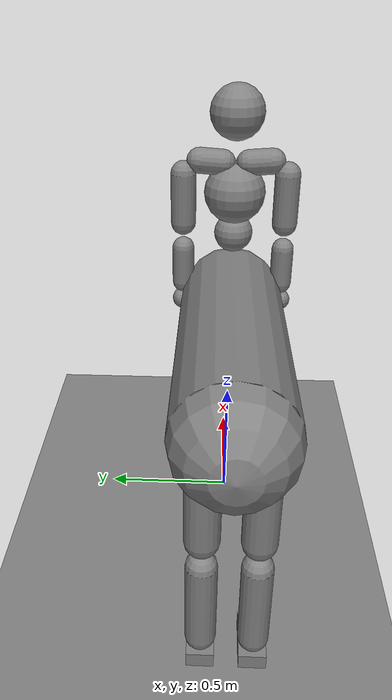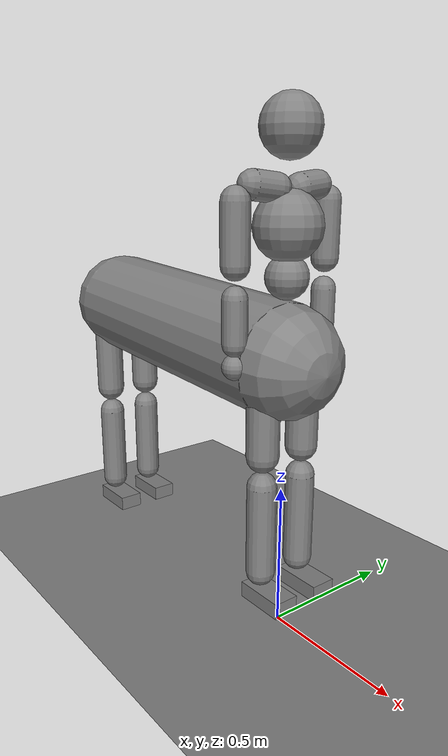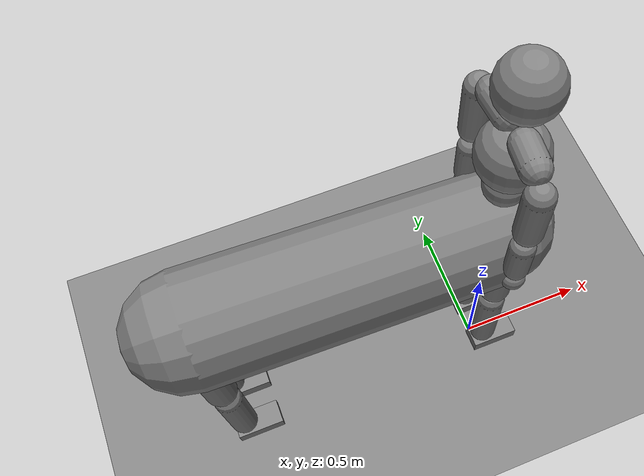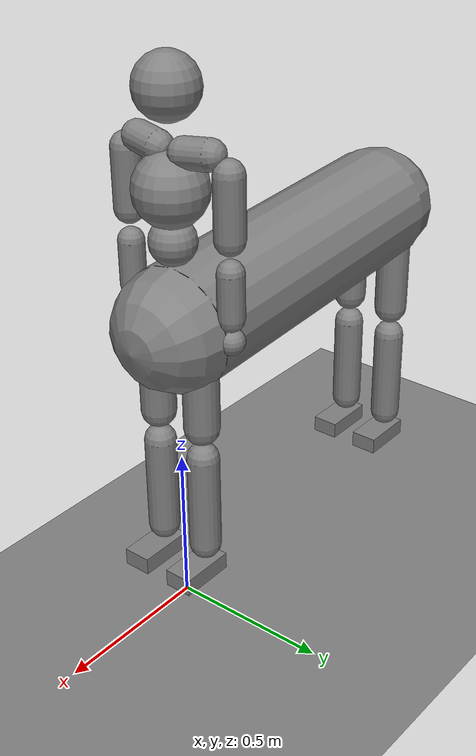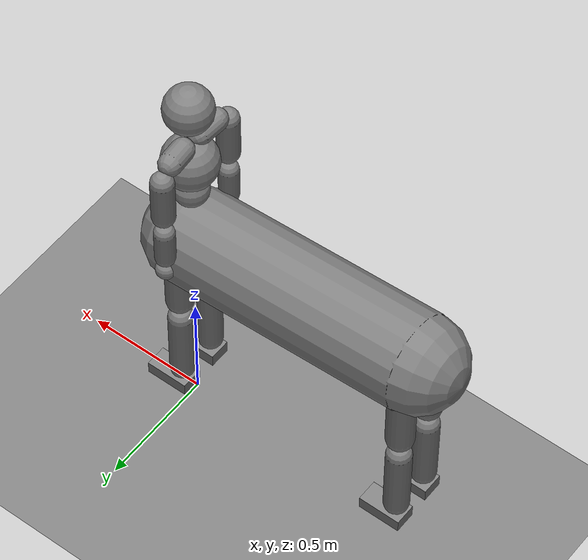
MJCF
<mujoco model="humanoid">

  <statistic extent="2" center="0 0 1"/>

  <option timestep="0.00555"/>

  <default>
    <motor ctrlrange="-1 1" ctrllimited="true"/>
    <default class="body">
      <geom type="capsule" condim="1" friction="1.0 0.05 0.05" solimp=".9 .99 .003" solref=".015 1"/>
      <joint type="hinge" damping="0.1" stiffness="5" armature=".007" limited="true" solimplimit="0 .99 .01"/>
      <site size=".04" group="3"/>
      <default class="force-torque">
        <site type="box" size=".01 .01 .02" rgba="1 0 0 1" />
      </default>
      <default class="touch">
        <site type="capsule" rgba="0 0 1 .3"/>
      </default>
    </default>
  </default>

  <worldbody>
    <geom name="floor" type="plane" conaffinity="1" size="100 100 .2"/>
    <body name="pelvis" pos="0 0 1" childclass="body">
      <freejoint name="root"/>
      <site name="root" class="force-torque"/>
      <geom name="pelvis" fromto="0 0 -0.06 -1 0 -0" size=".19" density="2226"/>
      <geom name="upper_waist" type="sphere" pos="0 0 0.205" size="0.07" density="2226"/>
      <site name="pelvis" class="touch" type="sphere" pos="0 0 0.07" size="0.091"/>
      <site name="upper_waist" class="touch" type="sphere" pos="0 0 0.205" size="0.071"/>

      <body name="torso" pos="0 0 0.236151">
        <light name="top" pos="0 0 2" mode="trackcom"/>
        <camera name="back" pos="-3 0 1" xyaxes="0 -1 0 1 0 2" mode="trackcom"/>
        <camera name="side" pos="0 -3 1" xyaxes="1 0 0 0 1 2" mode="trackcom"/>
        <joint name="abdomen_x" pos="0 0 0" axis="1 0 0" range="-60 60" stiffness="1000" damping="100" armature=".02"/>
        <joint name="abdomen_y" pos="0 0 0" axis="0 1 0" range="-60 90" stiffness="1000" damping="100" armature=".02"/>
        <joint name="abdomen_z" pos="0 0 0" axis="0 0 1" range="-50 50" stiffness="1000" damping="100" armature=".02"/>
        <geom name="torso" type="sphere" pos="0 0 0.12" size="0.11" density="1794"/>
        <site name="torso" class="touch" type="sphere" pos="0 0 0.12" size="0.111"/>

        <geom name="right_clavicle" fromto="-0.0060125 -0.0457775 0.2287955 -0.016835 -0.128177 0.2376182" size=".045" density="1100"/>
        <geom name="left_clavicle" fromto="-0.0060125 0.0457775 0.2287955 -0.016835 0.128177 0.2376182" size=".045" density="1100"/>

        <body name="head" pos="0 0 0.223894">
          <joint name="neck_x" axis="1 0 0" range="-50 50" stiffness="100" damping="10" armature=".01"/>
          <joint name="neck_y" axis="0 1 0" range="-40 60" stiffness="100" damping="10" armature=".01"/>
          <joint name="neck_z" axis="0 0 1" range="-45 45" stiffness="100" damping="10" armature=".01"/>
          <geom name="head" type="sphere" pos="0 0 0.175" size="0.095" density="1081"/>
          <site name="head" class="touch" pos="0 0 0.175" type="sphere" size="0.103"/>
          <camera name="egocentric" pos=".103 0 0.175" xyaxes="0 -1 0 .1 0 1" fovy="80"/>
        </body>

        <body name="right_upper_arm" pos="-0.02405 -0.18311 0.24350">
          <joint name="right_shoulder_x" axis="1 0 0" range="-180 45" stiffness="400" damping="40" armature=".02"/>
          <joint name="right_shoulder_y" axis="0 1 0" range="-180 60" stiffness="400" damping="40" armature=".02"/>
          <joint name="right_shoulder_z" axis="0 0 1"  range="-90 90" stiffness="400" damping="40" armature=".02"/>
          <geom name="right_upper_arm" fromto="0 0 -0.05 0 0 -0.23" size=".045" density="982"/>
          <site name="right_upper_arm" class="touch" pos="0 0 -0.14" size="0.046 0.1" zaxis="0 0 1"/>

          <body name="right_lower_arm" pos="0 0 -0.274788">
            <joint name="right_elbow" axis="0 1 0" range="-160 0" stiffness="300" damping="30" armature=".01"/>
            <geom name="right_lower_arm" fromto="0 0 -0.0525 0 0 -0.1875" size="0.04" density="1056"/>
            <site name="right_lower_arm" class="touch" pos="0 0 -0.12" size="0.041 0.0685" zaxis="0 1 0"/>

            <body name="right_hand" pos="0 0 -0.258947">
              <geom name="right_hand" type="sphere" size=".04" density="1865"/>
              <site name="right_hand" class="touch" type="sphere" size=".041"/>
            </body>
          </body>
        </body>

        <body name="left_upper_arm" pos="-0.02405 0.18311 0.24350">
          <joint name="left_shoulder_x" axis="1 0 0" range="-45 180" stiffness="400" damping="40" armature=".02"/>
          <joint name="left_shoulder_y" axis="0 1 0" range="-180 60" stiffness="400" damping="40" armature=".02"/>
          <joint name="left_shoulder_z" axis="0 0 1"  range="-90 90" stiffness="400" damping="40" armature=".02"/>
          <geom name="left_upper_arm" fromto="0 0 -0.05 0 0 -0.23" size="0.045" density="982"/>
          <site name="left_upper_arm" class="touch" pos="0 0 -0.14" size="0.046 0.1" zaxis="0 0 1"/>

          <body name="left_lower_arm" pos="0 0 -0.274788">
            <joint name="left_elbow" axis="0 1 0" range="-160 0" stiffness="300" damping="30" armature=".01"/>
            <geom name="left_lower_arm" fromto="0 0 -0.0525 0 0 -0.1875" size="0.04" density="1056"/>
            <site name="left_lower_arm" class="touch" pos="0 0 -0.1" size="0.041 0.0685" zaxis="0 0 1"/>

            <body name="left_hand" pos="0 0 -0.258947">
              <geom name="left_hand" type="sphere" size=".04" density="1865"/>
              <site name="left_hand" class="touch" type="sphere" size=".041"/>
            </body>
          </body>
        </body>
      </body>

      <body name="right_thigh" pos="0 -0.084887 0">
        <site name="right_hip" class="force-torque"/>
        <joint name="right_hip_x" axis="1 0 0" range="-60 15" stiffness="500" damping="50" armature=".02"/>
        <joint name="right_hip_y" axis="0 1 0" range="-140 60" stiffness="500" damping="50" armature=".02"/>
        <joint name="right_hip_z" axis="0 0 1" range="-60 35" stiffness="500" damping="50" armature=".02"/>
        <geom name="right_thigh" fromto="0 0 -0.06 0 0 -0.36" size="0.055" density="1269"/>
        <site name="right_thigh" class="touch" pos="0 0 -0.21" size="0.056 0.301" zaxis="0 0 -1"/>

        <body name="right_shin" pos="0 0 -0.421546">
          <site name="right_knee" class="force-torque" pos="0 0 0"/>
          <joint name="right_knee" pos="0 0 0" axis="0 1 0" range="0 160" stiffness="500" damping="50" armature=".02"/>
          <geom name="right_shin" fromto="0 0 -0.045 0 0 -0.355"  size=".05" density="1014"/>
          <site name="right_shin" class="touch" pos="0 0 -0.2" size="0.051 0.156" zaxis="0 0 -1"/>

          <body name="right_foot" pos="0 0 -0.409870">
            <site name="right_ankle" class="force-torque"/>
            <joint name="right_ankle_x" pos="0 0 0" axis="1 0 0" range="-30 30" stiffness="400" damping="40" armature=".01"/>
            <joint name="right_ankle_y" pos="0 0 0" axis="0 1 0" range="-55 55" stiffness="400" damping="40" armature=".01"/>
            <joint name="right_ankle_z" pos="0 0 0" axis="0 0 1" range="-40 40" stiffness="400" damping="40" armature=".01"/>
            <geom name="right_foot" type="box" pos="0.045 0 -0.0225" size="0.0885 0.045 0.0275" density="1141"/>
            <site name="right_foot" class="touch" type="box" pos="0.045 0 -0.0225" size="0.0895 0.055 0.0285"/>
          </body>
        </body>
      </body>

      <body name="left_thigh" pos="0 0.084887 0">
        <site name="left_hip" class="force-torque"/>
        <joint name="left_hip_x" axis="1 0 0" range="-15 60" stiffness="500" damping="50" armature=".02"/>
        <joint name="left_hip_y" axis="0 1 0" range="-140 60" stiffness="500" damping="50" armature=".02"/>
        <joint name="left_hip_z" axis="0 0 1" range="-35 60" stiffness="500" damping="50" armature=".02"/>
        <geom name="left_thigh" fromto="0 0 -0.06 0 0 -0.36" size=".055" density="1269"/>
        <site name="left_thigh" class="touch" pos="0 0 -0.21" size="0.056 0.301" zaxis="0 0 -1"/>

        <body name="left_shin" pos="0 0 -0.421546">
          <site name="left_knee" class="force-torque" pos="0 0 .02"/>
          <joint name="left_knee" pos="0 0 0" axis="0 1 0" range="0 160" stiffness="500" damping="50" armature=".02"/>
          <geom name="left_shin" fromto="0 0 -0.045 0 0 -0.355"  size=".05" density="1014"/>
          <site name="left_shin" class="touch" pos="0 0 -0.2" size="0.051 0.156" zaxis="0 0 -1"/>

          <body name="left_foot" pos="0 0 -0.409870">
            <site name="left_ankle" class="force-torque"/>
            <joint name="left_ankle_x" pos="0 0 0" axis="1 0 0" range="-30 30" stiffness="400" damping="40" armature=".01"/>
            <joint name="left_ankle_y" pos="0 0 0" axis="0 1 0" range="-55 55" stiffness="400" damping="40" armature=".01"/>
            <joint name="left_ankle_z" pos="0 0 0" axis="0 0 1" range="-40 40" stiffness="400" damping="40" armature=".01"/>
            <geom name="left_foot" type="box" pos="0.045 0 -0.0225" size="0.0885 0.045 0.0275" density="1141"/>
            <site name="left_foot" class="touch" type="box" pos="0.045 0 -0.0225" size="0.0895 0.055 0.0285"/>
          </body>
        </body>
      </body>

      <body name="left_thigh_2" pos="-1 0.084887 0">
        <site name="left_hip_2" class="force-torque"/>
        <joint name="left_hip_x_2" axis="1 0 0" range="-15 60" stiffness="500" damping="50" armature=".02"/>
        <joint name="left_hip_y_2" axis="0 1 0" range="-140 60" stiffness="500" damping="50" armature=".02"/>
        <joint name="left_hip_z_2" axis="0 0 1" range="-35 60" stiffness="500" damping="50" armature=".02"/>
        <geom name="left_thigh_2" fromto="0 0 -0.06 0 0 -0.36" size=".055" density="1269"/>
        <site name="left_thigh_2" class="touch" pos="0 0 -0.21" size="0.056 0.301" zaxis="0 0 -1"/>

        <body name="left_shin_2" pos="0 0 -0.421546">
          <site name="left_knee_2" class="force-torque" pos="0 0 .02"/>
          <joint name="left_knee_2" pos="0 0 0" axis="0 1 0" range="0 160" stiffness="500" damping="50" armature=".02"/>
          <geom name="left_shin_2" fromto="0 0 -0.045 0 0 -0.355"  size=".05" density="1014"/>
          <site name="left_shin_2" class="touch" pos="0 0 -0.2" size="0.051 0.156" zaxis="0 0 -1"/>

          <body name="left_foot_2" pos="0 0 -0.409870">
            <site name="left_ankle_2" class="force-torque"/>
            <joint name="left_ankle_x_2" pos="0 0 0" axis="1 0 0" range="-30 30" stiffness="400" damping="40" armature=".01"/>
            <joint name="left_ankle_y_2" pos="0 0 0" axis="0 1 0" range="-55 55" stiffness="400" damping="40" armature=".01"/>
            <joint name="left_ankle_z_2" pos="0 0 0" axis="0 0 1" range="-40 40" stiffness="400" damping="40" armature=".01"/>
            <geom name="left_foot_2" type="box" pos="0.045 0 -0.0225" size="0.0885 0.045 0.0275" density="1141"/>
            <site name="left_foot_2" class="touch" type="box" pos="0.045 0 -0.0225" size="0.0895 0.055 0.0285"/>
          </body>
        </body>
      </body>

      <body name="right_thigh_2" pos="-1 -0.084887 0">
        <site name="right_hip_2" class="force-torque"/>
        <joint name="right_hip_x_2" axis="1 0 0" range="-60 15" stiffness="500" damping="50" armature=".02"/>
        <joint name="right_hip_y_2" axis="0 1 0" range="-140 60" stiffness="500" damping="50" armature=".02"/>
        <joint name="right_hip_z_2" axis="0 0 1" range="-60 35" stiffness="500" damping="50" armature=".02"/>
        <geom name="right_thigh_2" fromto="0 0 -0.06 0 0 -0.36" size="0.055" density="1269"/>
        <site name="right_thigh_2" class="touch" pos="0 0 -0.21" size="0.056 0.301" zaxis="0 0 -1"/>

        <body name="right_shin_2" pos="0 0 -0.421546">
          <site name="right_knee_2" class="force-torque" pos="0 0 0"/>
          <joint name="right_knee_2" pos="0 0 0" axis="0 1 0" range="0 160" stiffness="500" damping="50" armature=".02"/>
          <geom name="right_shin_2" fromto="0 0 -0.045 0 0 -0.355"  size=".05" density="1014"/>
          <site name="right_shin_2" class="touch" pos="0 0 -0.2" size="0.051 0.156" zaxis="0 0 -1"/>

          <body name="right_foot_2" pos="0 0 -0.409870">
            <site name="right_ankle_2" class="force-torque"/>
            <joint name="right_ankle_x_2" pos="0 0 0" axis="1 0 0" range="-30 30" stiffness="400" damping="40" armature=".01"/>
            <joint name="right_ankle_y_2" pos="0 0 0" axis="0 1 0" range="-55 55" stiffness="400" damping="40" armature=".01"/>
            <joint name="right_ankle_z_2" pos="0 0 0" axis="0 0 1" range="-40 40" stiffness="400" damping="40" armature=".01"/>
            <geom name="right_foot_2" type="box" pos="0.045 0 -0.0225" size="0.0885 0.045 0.0275" density="1141"/>
            <site name="right_foot_2" class="touch" type="box" pos="0.045 0 -0.0225" size="0.0895 0.055 0.0285"/>
          </body>
        </body>
      </body>
    </body>
  </worldbody>

  <actuator>
    <motor name='abdomen_x'       	gear='200' 	joint='abdomen_x'/>
    <motor name='abdomen_y'       	gear='200' 	joint='abdomen_y'/>
    <motor name='abdomen_z'       	gear='200' 	joint='abdomen_z'/>
    <motor name='neck_x'          	gear='50' 	joint='neck_x'/>
    <motor name='neck_y'            gear='50' 	joint='neck_y'/>
    <motor name='neck_z'           	gear='50' 	joint='neck_z'/>
    <motor name='right_shoulder_x' 	gear='100' 	joint='right_shoulder_x'/>
    <motor name='right_shoulder_y' 	gear='100' 	joint='right_shoulder_y'/>
    <motor name='right_shoulder_z' 	gear='100' 	joint='right_shoulder_z'/>
    <motor name='right_elbow'     	gear='70' 	joint='right_elbow'/>
    <motor name='left_shoulder_x' 	gear='100' 	joint='left_shoulder_x'/>
    <motor name='left_shoulder_y' 	gear='100' 	joint='left_shoulder_y'/>
    <motor name='left_shoulder_z' 	gear='100' 	joint='left_shoulder_z'/>
    <motor name='left_elbow'      	gear='70' 	joint='left_elbow'/>
    <motor name='right_hip_x'     	gear='200' 	joint='right_hip_x'/>
    <motor name='right_hip_z'     	gear='200' 	joint='right_hip_z'/>
    <motor name='right_hip_y'     	gear='200' 	joint='right_hip_y'/>
    <motor name='right_knee'      	gear='150' 	joint='right_knee'/>
    <motor name='right_ankle_x'   	gear='90' 	joint='right_ankle_x'/>
    <motor name='right_ankle_y'   	gear='90' 	joint='right_ankle_y'/>
    <motor name='right_ankle_z'   	gear='90' 	joint='right_ankle_z'/>
    <motor name='right_hip_x_2'     	gear='200' 	joint='right_hip_x_2'/>
    <motor name='right_hip_z_2'     	gear='200' 	joint='right_hip_z_2'/>
    <motor name='right_hip_y_2'     	gear='200' 	joint='right_hip_y_2'/>
    <motor name='right_knee_2'      	gear='150' 	joint='right_knee_2'/>
    <motor name='right_ankle_x_2'   	gear='90' 	joint='right_ankle_x_2'/>
    <motor name='right_ankle_y_2'   	gear='90' 	joint='right_ankle_y_2'/>
    <motor name='right_ankle_z_2'   	gear='90' 	joint='right_ankle_z_2'/>
    <motor name='left_hip_x'      	gear='200' 	joint='left_hip_x'/>
    <motor name='left_hip_z'      	gear='200' 	joint='left_hip_z'/>
    <motor name='left_hip_y'      	gear='200' 	joint='left_hip_y'/>
    <motor name='left_knee'       	gear='150' 	joint='left_knee'/>
    <motor name='left_ankle_x'    	gear='90' 	joint='left_ankle_x'/>
    <motor name='left_ankle_y'    	gear='90' 	joint='left_ankle_y'/>
    <motor name='left_ankle_z'    	gear='90' 	joint='left_ankle_z'/>
    <motor name='left_hip_x_2'      	gear='200' 	joint='left_hip_x_2'/>
    <motor name='left_hip_z_2'      	gear='200' 	joint='left_hip_z_2'/>
    <motor name='left_hip_y_2'      	gear='200' 	joint='left_hip_y_2'/>
    <motor name='left_knee_2'       	gear='150' 	joint='left_knee_2'/>
    <motor name='left_ankle_x_2'    	gear='90' 	joint='left_ankle_x_2'/>
    <motor name='left_ankle_y_2'    	gear='90' 	joint='left_ankle_y_2'/>
    <motor name='left_ankle_z_2'    	gear='90' 	joint='left_ankle_z_2'/>
  </actuator>

  <sensor>
    <subtreelinvel name="pelvis_subtreelinvel" body="pelvis"/>
    <accelerometer name="root_accel"    site="root"/>
    <velocimeter name="root_vel"        site="root"/>
    <gyro name="root_gyro"              site="root"/>

    <force name="left_ankle_force"       site="left_ankle"/>
    <force name="right_ankle_force"      site="right_ankle"/>
    <force name="left_knee_force"        site="left_knee"/>
    <force name="right_knee_force"       site="right_knee"/>
    <force name="left_hip_force"         site="left_hip"/>
    <force name="right_hip_force"        site="right_hip"/>

    <torque name="left_ankle_torque"     site="left_ankle"/>
    <torque name="right_ankle_torque"    site="right_ankle"/>
    <torque name="left_knee_torque"      site="left_knee"/>
    <torque name="right_knee_torque"     site="right_knee"/>
    <torque name="left_hip_torque"       site="left_hip"/>
    <torque name="right_hip_torque"      site="right_hip"/>

    <force name="left_ankle_force_2"       site="left_ankle_2"/>
    <force name="right_ankle_force_2"      site="right_ankle_2"/>
    <force name="left_knee_force_2"        site="left_knee_2"/>
    <force name="right_knee_force_2"       site="right_knee_2"/>
    <force name="left_hip_force_2"         site="left_hip_2"/>
    <force name="right_hip_force_2"        site="right_hip_2"/>

    <torque name="left_ankle_torque_2"     site="left_ankle_2"/>
    <torque name="right_ankle_torque_2"    site="right_ankle_2"/>
    <torque name="left_knee_torque_2"      site="left_knee_2"/>
    <torque name="right_knee_torque_2"     site="right_knee_2"/>
    <torque name="left_hip_torque_2"       site="left_hip_2"/>
    <torque name="right_hip_torque_2"      site="right_hip_2"/>

    <touch name="pelvis_touch"           site="pelvis"/>
    <touch name="upper_waist_touch"      site="upper_waist"/>
    <touch name="torso_touch"            site="torso"/>
    <touch name="head_touch"             site="head"/>
    <touch name="right_upper_arm_touch"  site="right_upper_arm"/>
    <touch name="right_lower_arm_touch"  site="right_lower_arm"/>
    <touch name="right_hand_touch"       site="right_hand"/>
    <touch name="left_upper_arm_touch"   site="left_upper_arm"/>
    <touch name="left_lower_arm_touch"   site="left_lower_arm"/>
    <touch name="left_hand_touch"        site="left_hand"/>
    <touch name="right_thigh_touch"      site="right_thigh"/>
    <touch name="right_shin_touch"       site="right_shin"/>
    <touch name="right_foot_touch"       site="right_foot"/>
    <touch name="left_thigh_touch"       site="left_thigh"/>
    <touch name="left_shin_touch"        site="left_shin"/>
    <touch name="left_foot_touch"        site="left_foot"/>
  </sensor>

</mujoco>
